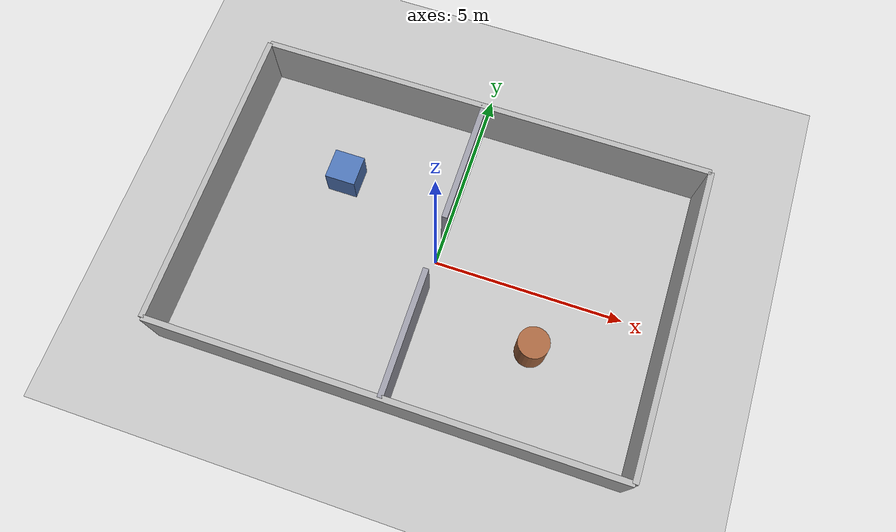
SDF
<?xml version="1.0" ?>
<sdf version="1.9">

  <world name="two_room_world">

    <physics name="physics" type="ode">
      <max_step_size>0.001</max_step_size>
      <real_time_factor>1.0</real_time_factor>
      <real_time_update_rate>1000</real_time_update_rate>
    </physics>

    <plugin
      filename="gz-sim-physics-system"
      name="gz::sim::systems::Physics"/>

    <plugin
      filename="gz-sim-user-commands-system"
      name="gz::sim::systems::UserCommands"/>

    <plugin
      filename="gz-sim-scene-broadcaster-system"
      name="gz::sim::systems::SceneBroadcaster"/>

    <plugin
      filename="gz-sim-sensors-system"
      name="gz::sim::systems::Sensors">
      <render_engine>ogre2</render_engine>
    </plugin>

    <light type="directional" name="sun">
      <cast_shadows>false</cast_shadows>

      <pose>0 0 10 0 0 0</pose>

      <diffuse>0.8 0.8 0.8 1</diffuse>
      <specular>0.2 0.2 0.2 1</specular>

      <direction>-0.5 0.1 -0.9</direction>
    </light>

    <model name="ground_plane">
      <static>true</static>

      <link name="link">

        <collision name="collision">
          <geometry>
            <plane>
              <normal>0 0 1</normal>
              <size>30 30</size>
            </plane>
          </geometry>
        </collision>

        <visual name="visual">
          <geometry>
            <plane>
              <normal>0 0 1</normal>
              <size>30 30</size>
            </plane>
          </geometry>

          <material>
            <ambient>0.75 0.75 0.75 1</ambient>
            <diffuse>0.75 0.75 0.75 1</diffuse>
            <specular>0 0 0 1</specular>
          </material>
        </visual>

      </link>
    </model>

    <!-- Outer wall: bottom -->
    <model name="south_wall">
      <static>true</static>

      <pose>0 -4 0.75 0 0 0</pose>

      <link name="link">

        <collision name="collision">
          <geometry>
            <box>
              <size>12 0.15 1.5</size>
            </box>
          </geometry>
        </collision>

        <visual name="visual">
          <geometry>
            <box>
              <size>12 0.15 1.5</size>
            </box>
          </geometry>

          <material>
            <ambient>0.7 0.7 0.7 1</ambient>
            <diffuse>0.7 0.7 0.7 1</diffuse>
          </material>
        </visual>

      </link>
    </model>

    <!-- Outer wall: top -->
    <model name="north_wall">
      <static>true</static>

      <pose>0 4 0.75 0 0 0</pose>

      <link name="link">

        <collision name="collision">
          <geometry>
            <box>
              <size>12 0.15 1.5</size>
            </box>
          </geometry>
        </collision>

        <visual name="visual">
          <geometry>
            <box>
              <size>12 0.15 1.5</size>
            </box>
          </geometry>

          <material>
            <ambient>0.7 0.7 0.7 1</ambient>
            <diffuse>0.7 0.7 0.7 1</diffuse>
          </material>
        </visual>

      </link>
    </model>

    <!-- Outer wall: left -->
    <model name="west_wall">
      <static>true</static>

      <pose>-6 0 0.75 0 0 0</pose>

      <link name="link">

        <collision name="collision">
          <geometry>
            <box>
              <size>0.15 8 1.5</size>
            </box>
          </geometry>
        </collision>

        <visual name="visual">
          <geometry>
            <box>
              <size>0.15 8 1.5</size>
            </box>
          </geometry>

          <material>
            <ambient>0.7 0.7 0.7 1</ambient>
            <diffuse>0.7 0.7 0.7 1</diffuse>
          </material>
        </visual>

      </link>
    </model>

    <!-- Outer wall: right -->
    <model name="east_wall">
      <static>true</static>

      <pose>6 0 0.75 0 0 0</pose>

      <link name="link">

        <collision name="collision">
          <geometry>
            <box>
              <size>0.15 8 1.5</size>
            </box>
          </geometry>
        </collision>

        <visual name="visual">
          <geometry>
            <box>
              <size>0.15 8 1.5</size>
            </box>
          </geometry>

          <material>
            <ambient>0.7 0.7 0.7 1</ambient>
            <diffuse>0.7 0.7 0.7 1</diffuse>
          </material>
        </visual>

      </link>
    </model>

    <!-- Interior divider, lower section -->
    <model name="divider_lower">
      <static>true</static>

      <pose>0 -2.35 0.75 0 0 0</pose>

      <link name="link">

        <collision name="collision">
          <geometry>
            <box>
              <size>0.15 3.3 1.5</size>
            </box>
          </geometry>
        </collision>

        <visual name="visual">
          <geometry>
            <box>
              <size>0.15 3.3 1.5</size>
            </box>
          </geometry>

          <material>
            <ambient>0.6 0.6 0.65 1</ambient>
            <diffuse>0.6 0.6 0.65 1</diffuse>
          </material>
        </visual>

      </link>
    </model>

    <!-- Interior divider, upper section -->
    <model name="divider_upper">
      <static>true</static>

      <pose>0 2.35 0.75 0 0 0</pose>

      <link name="link">

        <collision name="collision">
          <geometry>
            <box>
              <size>0.15 3.3 1.5</size>
            </box>
          </geometry>
        </collision>

        <visual name="visual">
          <geometry>
            <box>
              <size>0.15 3.3 1.5</size>
            </box>
          </geometry>

          <material>
            <ambient>0.6 0.6 0.65 1</ambient>
            <diffuse>0.6 0.6 0.65 1</diffuse>
          </material>
        </visual>

      </link>
    </model>

    <!-- Lightweight obstacle in Room 1 -->
    <model name="room1_box">
      <static>true</static>

      <pose>-3 1.5 0.4 0 0 0</pose>

      <link name="link">

        <collision name="collision">
          <geometry>
            <box>
              <size>0.8 0.8 0.8</size>
            </box>
          </geometry>
        </collision>

        <visual name="visual">
          <geometry>
            <box>
              <size>0.8 0.8 0.8</size>
            </box>
          </geometry>

          <material>
            <ambient>0.3 0.45 0.7 1</ambient>
            <diffuse>0.3 0.45 0.7 1</diffuse>
          </material>
        </visual>

      </link>
    </model>

    <!-- Lightweight obstacle in Room 2 -->
    <model name="room2_cylinder">
      <static>true</static>

      <pose>3 -1.5 0.5 0 0 0</pose>

      <link name="link">

        <collision name="collision">
          <geometry>
            <cylinder>
              <radius>0.4</radius>
              <length>1.0</length>
            </cylinder>
          </geometry>
        </collision>

        <visual name="visual">
          <geometry>
            <cylinder>
              <radius>0.4</radius>
              <length>1.0</length>
            </cylinder>
          </geometry>

          <material>
            <ambient>0.65 0.4 0.25 1</ambient>
            <diffuse>0.65 0.4 0.25 1</diffuse>
          </material>
        </visual>

      </link>
    </model>

  </world>

</sdf>
